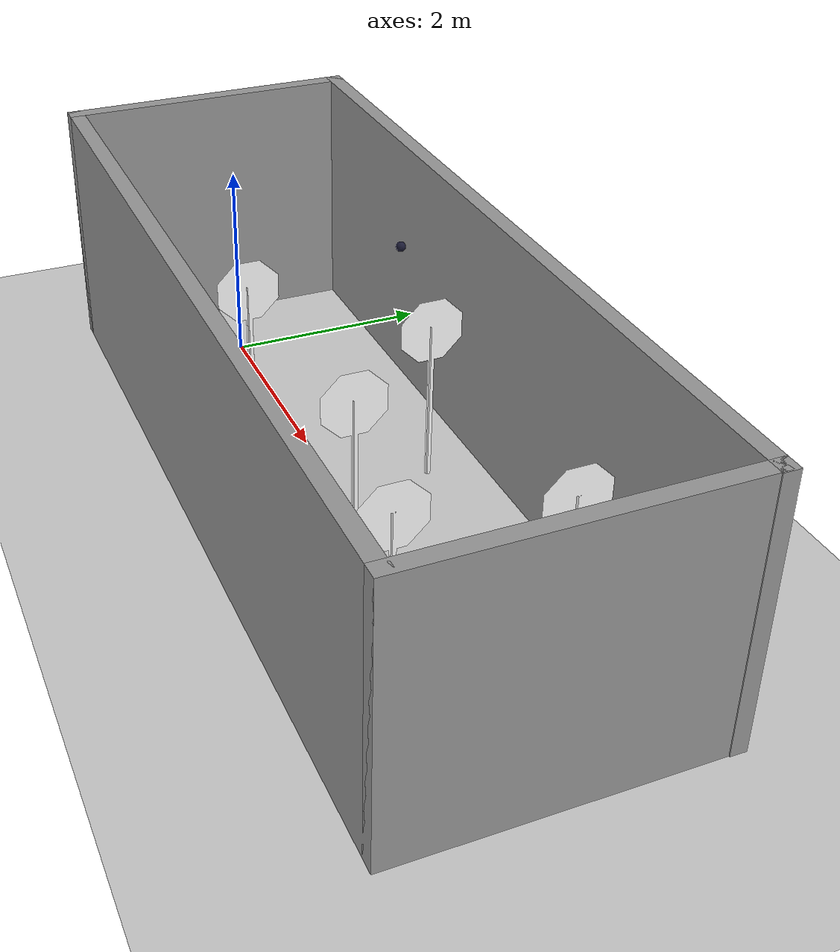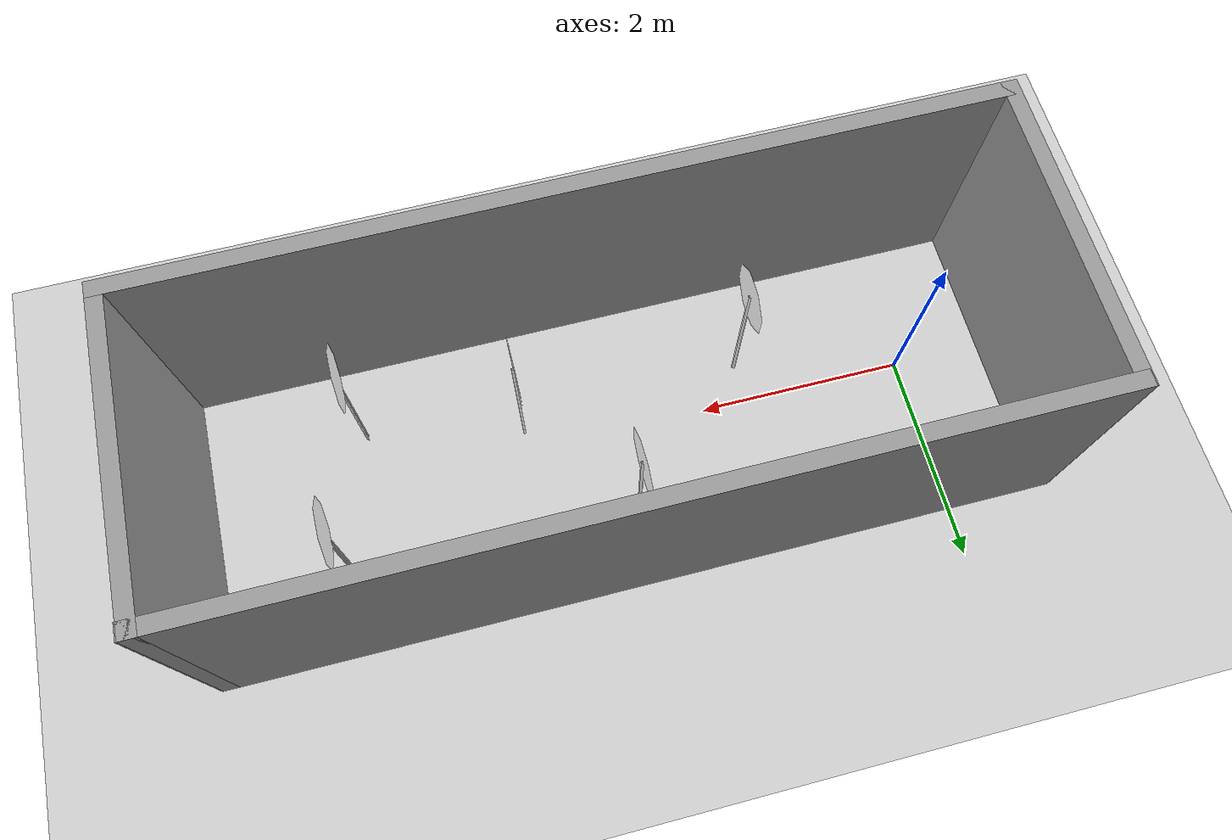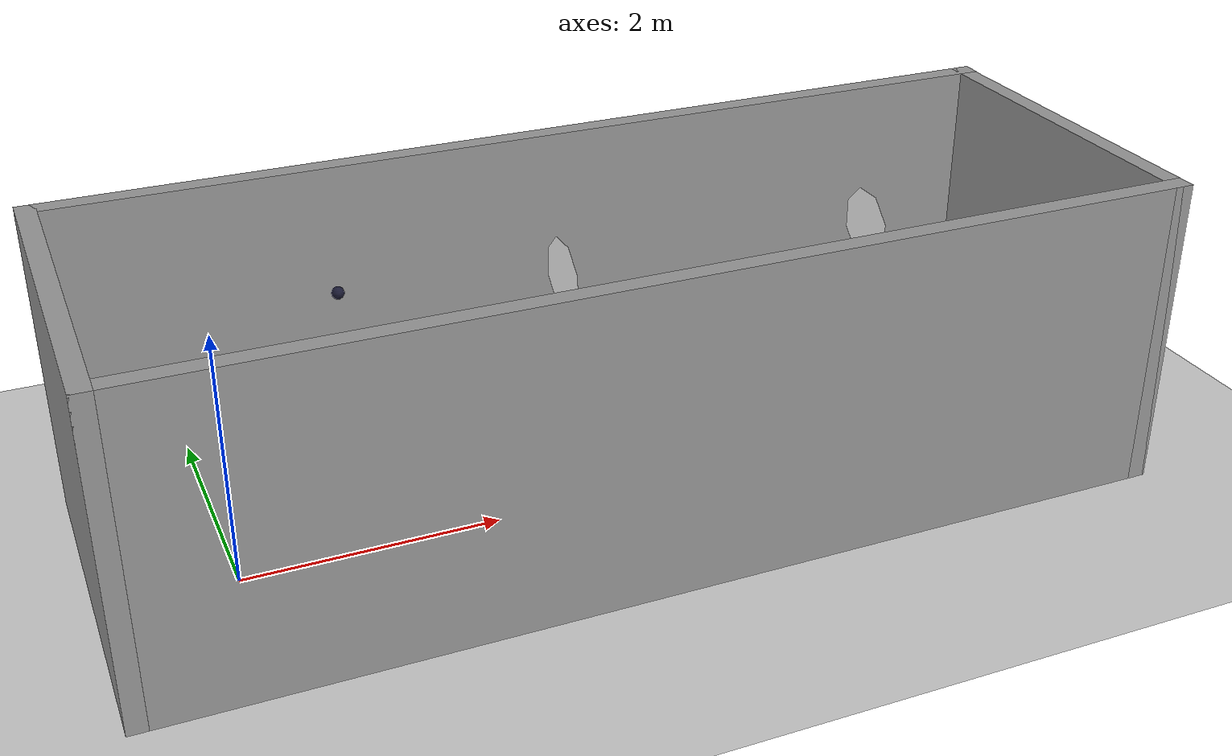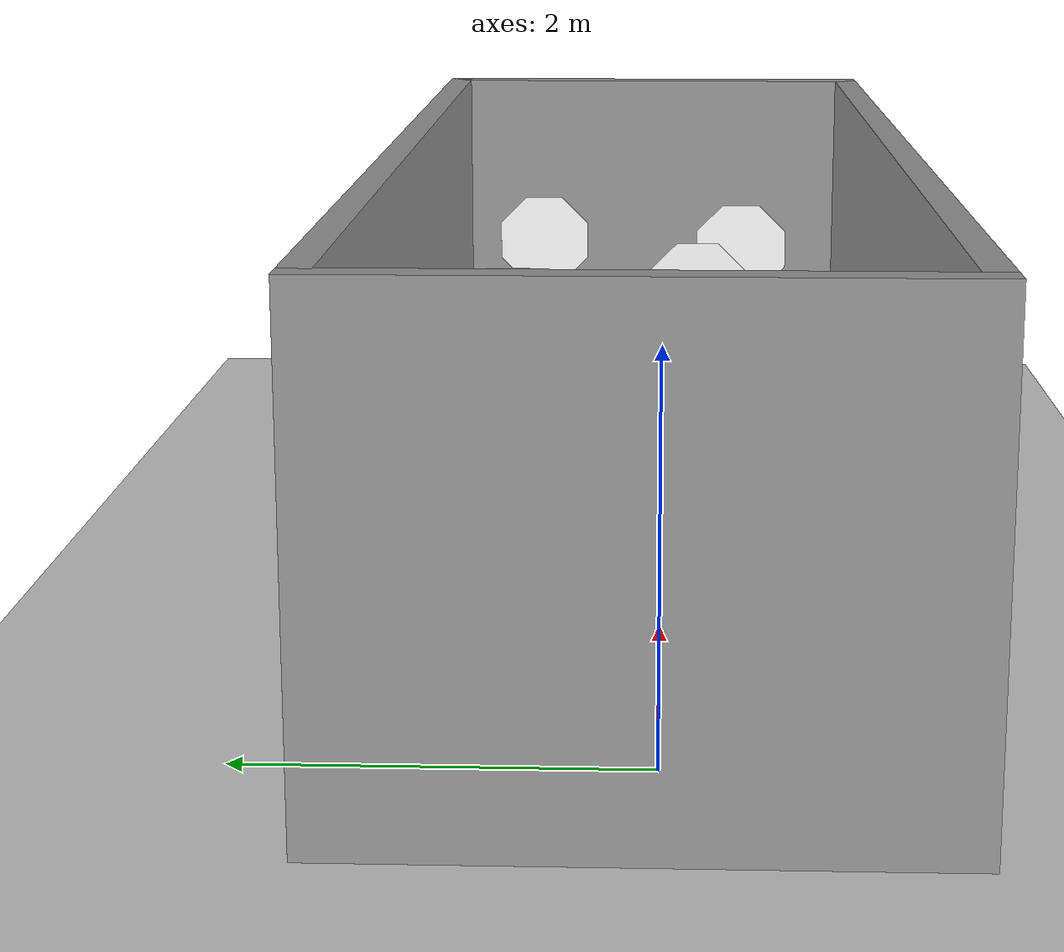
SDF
<sdf version="1.6">
 <world name="default">
  <plugin name="ros_interface_plugin" filename="librotors_gazebo_ros_interface_plugin.so"/>
  <light name="sun" type="directional">
   <pose>0 0 10 0 -0 0</pose>
   <diffuse>0.8 0.8 0.8 1</diffuse>
   <specular>0.2 0.2 0.2 1</specular>
   <attenuation>
    <range>1000</range>
    <constant>0.9</constant>
    <linear>0.01</linear>
    <quadratic>0.001</quadratic>
   </attenuation>
   <direction>-0.5 0.1 -0.9</direction>
  </light>
  <model name="target">
   <pose>1.2 1.32 1.5 0 0 0</pose>
   <static>0</static>
   <link name="link">
    <gravity>0</gravity>
    <collision name="collision">
     <geometry><sphere><radius>0.051</radius></sphere></geometry>
     <surface><contact><collide_without_contact>1</collide_without_contact></contact></surface>
    </collision>
    <visual name="visual">
     <material>
      <ambient>0.1 0.1 0.1 1</ambient>
      <diffuse>0.1 0.1 0.2 1</diffuse>
      <specular>0 1 1 0</specular>
      <emissive>0 1 0 1</emissive>
     </material>
     <geometry><sphere><radius>0.051</radius></sphere></geometry>
    </visual>
   </link>
  </model>
  <model name="ground_plane">
   <static>1</static>
   <link name="link">
    <collision name="collision">
     <geometry><plane><normal>0 0 1</normal><size>100 100</size></plane></geometry>
     <surface><friction><ode><mu>100</mu><mu2>50</mu2></ode></friction></surface>
    </collision>
    <visual name="visual">
     <cast_shadows>0</cast_shadows>
     <geometry><plane><normal>0 0 1</normal><size>100 100</size></plane></geometry>
     <material>
      <script><uri>file://media/materials/scripts/gazebo.material</uri><name>Gazebo/Grey</name></script>
     </material>
    </visual>
   </link>
  </model>
  <gravity>0 0 -9.8</gravity>
  <magnetic_field>6e-06 2.3e-05 -4.2e-05</magnetic_field>
  <atmosphere type="adiabatic"/>
  <physics name="default_physics" default="0" type="ode">
   <max_step_size>0.001</max_step_size>
   <real_time_factor>1</real_time_factor>
   <real_time_update_rate>1000</real_time_update_rate>
  </physics>
  <scene><ambient>0.4 0.4 0.4 1</ambient><background>0.7 0.7 0.7 1</background><shadows>1</shadows></scene>
  <spherical_coordinates>
   <surface_model>EARTH_WGS84</surface_model>
   <latitude_deg>0</latitude_deg>
   <longitude_deg>0</longitude_deg>
   <elevation>0</elevation>
   <heading_deg>0</heading_deg>
  </spherical_coordinates>
  <model name="dynamic">
   <pose frame="world">2.97684 0.071302 0 0 -0 0</pose>
   <link name="Wall_0">
    <collision name="Wall_0_Collision">
     <geometry><box><size>8 0.15 2.5</size></box></geometry>
     <pose>0 0 1.25 0 -0 0</pose>
    </collision>
    <visual name="Wall_0_Visual">
     <pose>0 0 1.25 0 -0 0</pose>
     <geometry><box><size>8 0.15 2.5</size></box></geometry>
     <material>
      <script><uri>file://media/materials/scripts/gazebo.material</uri><name>Gazebo/Grey</name></script>
      <ambient>1 1 1 1</ambient>
     </material>
     <meta><layer>0</layer></meta>
    </visual>
    <pose>0.005 1.405 0 0 -0 3.14159</pose>
   </link>
   <link name="Wall_1">
    <collision name="Wall_1_Collision">
     <geometry><box><size>2.96 0.15 2.5</size></box></geometry>
     <pose>0 0 1.25 0 -0 0</pose>
    </collision>
    <visual name="Wall_1_Visual">
     <pose>0 0 1.25 0 -0 0</pose>
     <geometry><box><size>2.96 0.15 2.5</size></box></geometry>
     <material>
      <script><uri>file://media/materials/scripts/gazebo.material</uri><name>Gazebo/Grey</name></script>
      <ambient>1 1 1 1</ambient>
     </material>
     <meta><layer>0</layer></meta>
    </visual>
    <pose>-3.93 0 0 0 -0 -1.5708</pose>
   </link>
   <link name="Wall_2">
    <collision name="Wall_2_Collision">
     <geometry><box><size>8 0.15 2.5</size></box></geometry>
     <pose>0 0 1.25 0 -0 0</pose>
    </collision>
    <visual name="Wall_2_Visual">
     <pose>0 0 1.25 0 -0 0</pose>
     <geometry><box><size>8 0.15 2.5</size></box></geometry>
     <material>
      <script><uri>file://media/materials/scripts/gazebo.material</uri><name>Gazebo/Grey</name></script>
      <ambient>1 1 1 1</ambient>
     </material>
     <meta><layer>0</layer></meta>
    </visual>
    <pose>-0.005 -1.405 0 0 -0 0</pose>
   </link>
   <link name="Wall_3">
    <collision name="Wall_3_Collision">
     <geometry><box><size>2.96 0.15 2.5</size></box></geometry>
     <pose>0 0 1.25 0 -0 0</pose>
    </collision>
    <visual name="Wall_3_Visual">
     <pose>0 0 1.25 0 -0 0</pose>
     <geometry><box><size>2.96 0.15 2.5</size></box></geometry>
     <material>
      <script><uri>file://media/materials/scripts/gazebo.material</uri><name>Gazebo/Grey</name></script>
      <ambient>1 1 1 1</ambient>
     </material>
     <meta><layer>0</layer></meta>
    </visual>
    <pose>3.92 0 0 0 -0 1.5708</pose>
   </link>
   <link name="Wall_4">
    <collision name="Wall_4_Collision">
     <geometry><box><size>0.15 0.15 2.5</size></box></geometry>
     <pose>0 0 1.25 0 -0 0</pose>
    </collision>
    <visual name="Wall_4_Visual">
     <pose>0 0 1.25 0 -0 0</pose>
     <geometry><box><size>0.15 0.15 2.5</size></box></geometry>
     <material>
      <script><uri>file://media/materials/scripts/gazebo.material</uri><name>Gazebo/Grey</name></script>
      <ambient>1 1 1 1</ambient>
     </material>
     <meta><layer>0</layer></meta>
    </visual>
    <pose>3.92 1.405 0 0 -0 0</pose>
   </link>
   <static>1</static>
  </model>
  <model name="Stop Sign">
   <link name="link">
    <collision name="collision">
     <geometry><mesh><uri>model://stop_sign/meshes/stop_sign.dae</uri></mesh></geometry>
    </collision>
    <visual name="visual">
     <geometry><mesh><uri>model://stop_sign/meshes/stop_sign.dae</uri></mesh></geometry>
     <material>
      <script>
       <uri>model://stop_sign/materials/scripts</uri>
       <uri>model://stop_sign/materials/textures</uri>
       <name>StopSign/Diffuse</name>
      </script>
     </material>
    </visual>
   </link>
   <pose>5.60564 0.804436 0 0 0 -1.562</pose>
  </model>
  <model name="Stop Sign_clone">
   <link name="link">
    <collision name="collision">
     <geometry><mesh><uri>model://stop_sign/meshes/stop_sign.dae</uri></mesh></geometry>
    </collision>
    <visual name="visual">
     <geometry><mesh><uri>model://stop_sign/meshes/stop_sign.dae</uri></mesh></geometry>
     <material>
      <script>
       <uri>model://stop_sign/materials/scripts</uri>
       <uri>model://stop_sign/materials/textures</uri>
       <name>StopSign/Diffuse</name>
      </script>
     </material>
    </visual>
   </link>
   <pose>3.77518 -0.218666 0 0 0 -1.56959</pose>
  </model>
  <model name="Stop Sign_clone_0">
   <link name="link">
    <collision name="collision">
     <geometry><mesh><uri>model://stop_sign/meshes/stop_sign.dae</uri></mesh></geometry>
    </collision>
    <visual name="visual">
     <geometry><mesh><uri>model://stop_sign/meshes/stop_sign.dae</uri></mesh></geometry>
     <material>
      <script>
       <uri>model://stop_sign/materials/scripts</uri>
       <uri>model://stop_sign/materials/textures</uri>
       <name>StopSign/Diffuse</name>
      </script>
     </material>
    </visual>
   </link>
   <pose>2.9046 0.874223 0 0 0 -1.5479</pose>
  </model>
  <model name="Stop Sign_clone_1">
   <link name="link">
    <collision name="collision">
     <geometry><mesh><uri>model://stop_sign/meshes/stop_sign.dae</uri></mesh></geometry>
    </collision>
    <visual name="visual">
     <geometry><mesh><uri>model://stop_sign/meshes/stop_sign.dae</uri></mesh></geometry>
     <material>
      <script>
       <uri>model://stop_sign/materials/scripts</uri>
       <uri>model://stop_sign/materials/textures</uri>
       <name>StopSign/Diffuse</name>
      </script>
     </material>
    </visual>
   </link>
   <pose>1.58467 -0.389031 0 0 0 -1.562</pose>
  </model>
  <model name="Stop Sign_clone_1_clone">
   <link name="link">
    <collision name="collision">
     <geometry><mesh><uri>model://stop_sign/meshes/stop_sign.dae</uri></mesh></geometry>
    </collision>
    <visual name="visual">
     <geometry><mesh><uri>model://stop_sign/meshes/stop_sign.dae</uri></mesh></geometry>
     <material>
      <script>
       <uri>model://stop_sign/materials/scripts</uri>
       <uri>model://stop_sign/materials/textures</uri>
       <name>StopSign/Diffuse</name>
      </script>
     </material>
    </visual>
   </link>
   <pose>5.28456 -0.53296 0 0 0 -1.562</pose>
  </model>
 </world>
</sdf>
